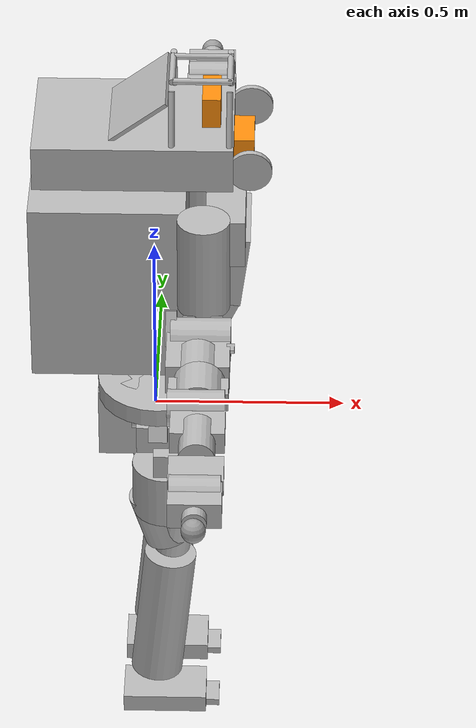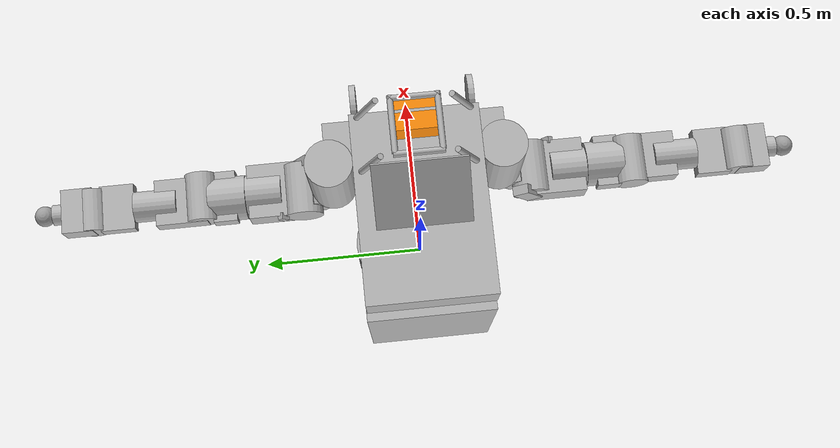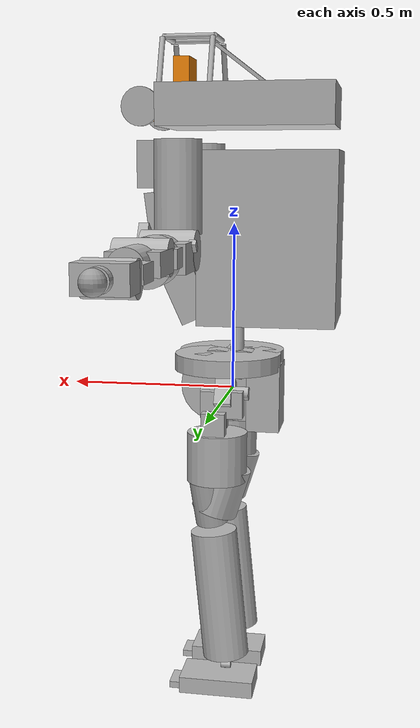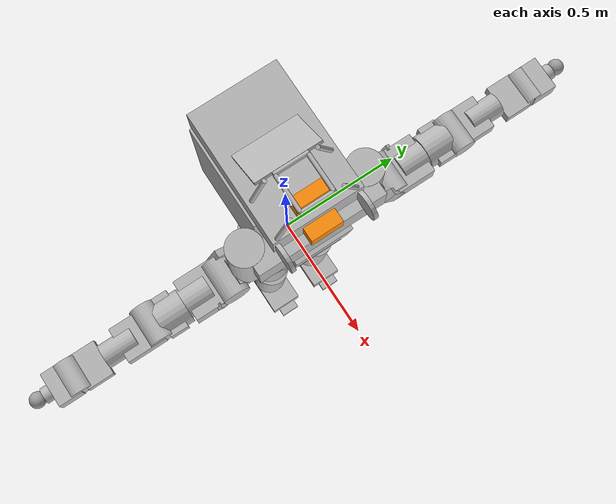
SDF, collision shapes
<sdf version='1.11'>
  <model name='multisense_sl'>
    <link name='pelvis'>
      <inertial>
        <pose>0.0111 0 0.027099999999999999 0 0 0</pose>
        <mass>9.5090000000000003</mass>
        <inertia>
          <ixx>0.1244</ixx>
          <ixy>0.00080000000000000004</ixy>
          <ixz>-0.00069999999999999999</ixz>
          <iyy>0.095799999999999996</iyy>
          <iyz>-0.00050000000000000001</iyz>
          <izz>0.1167</izz>
        </inertia>
      </inertial>
      <collision name='pelvis_collision'>
        <pose>0.045999999999999999 0 0.01 1.5707963267949003 0 0</pose>
        <geometry>
          <cylinder>
            <length>0.059999999999999998</length>
            <radius>0.11</radius>
          </cylinder>
        </geometry>
      </collision>
      <collision name='pelvis_collision_1'>
        <pose>-0.029999999999999999 0 0.01 1.5707963267949003 0 0</pose>
        <geometry>
          <cylinder>
            <length>0.059999999999999998</length>
            <radius>0.11</radius>
          </cylinder>
        </geometry>
      </collision>
      <collision name='pelvis_collision_2'>
        <pose>0.01 0.042000000000000003 0.089999999999999997 0 0 0</pose>
        <geometry>
          <cylinder>
            <length>0.050000000000000003</length>
            <radius>0.16</radius>
          </cylinder>
        </geometry>
      </collision>
      <collision name='pelvis_collision_3'>
        <pose>0.01 -0.042000000000000003 0.089999999999999997 0 0 0</pose>
        <geometry>
          <cylinder>
            <length>0.050000000000000003</length>
            <radius>0.16</radius>
          </cylinder>
        </geometry>
      </collision>
      <collision name='pelvis_collision_4'>
        <pose>-0.10000000000000001 0 -0.02 0 0 0</pose>
        <geometry>
          <box>
            <size>0.10000000000000001 0.14999999999999999 0.20000000000000001</size>
          </box>
        </geometry>
      </collision>
      <visual name='pelvis_visual'>
        <pose>0 0 0 0 0 0</pose>
        <geometry>
          <mesh>
            <scale>1 1 1</scale>
            <uri>atlas_description/meshes_unplugged/pelvis.dae</uri>
          </mesh>
        </geometry>
      </visual>
    </link>
    <joint name='back_bkz' type='revolute'>
      <pose relative_to='pelvis'>-0.012500000000000001 0 0 0 0 0</pose>
      <parent>pelvis</parent>
      <child>ltorso</child>
      <axis>
        <xyz>0 0 1</xyz>
        <limit>
          <lower>-0.66322499999999995</lower>
          <upper>0.66322499999999995</upper>
          <effort>106</effort>
          <velocity>12</velocity>
        </limit>
        <dynamics>
          <damping>0.10000000000000001</damping>
          <friction>0</friction>
          <spring_reference>0</spring_reference>
          <spring_stiffness>0</spring_stiffness>
        </dynamics>
      </axis>
    </joint>
    <link name='ltorso'>
      <pose relative_to='back_bkz'>0 0 0 0 0 0</pose>
      <inertial>
        <pose>-0.0112984 -3.1536600000000001e-06 0.0746835 0 0 0</pose>
        <mass>2.27</mass>
        <inertia>
          <ixx>0.0039091999999999998</ixx>
          <ixy>-5.0449100000000003e-08</ixy>
          <ixz>-0.000342157</ixz>
          <iyy>0.0034169399999999998</iyy>
          <iyz>4.8711899999999996e-07</iyz>
          <izz>0.0017449200000000001</izz>
        </inertia>
      </inertial>
      <visual name='ltorso_visual'>
        <pose>0 0 0 0 0 0</pose>
        <geometry>
          <mesh>
            <scale>1 1 1</scale>
            <uri>atlas_description/meshes_unplugged/ltorso.dae</uri>
          </mesh>
        </geometry>
      </visual>
    </link>
    <joint name='back_bky' type='revolute'>
      <pose relative_to='ltorso'>0 0 0.16200000000000001 0 0 0</pose>
      <parent>ltorso</parent>
      <child>mtorso</child>
      <axis>
        <xyz>0 1 0</xyz>
        <limit>
          <lower>-0.219388</lower>
          <upper>0.53878300000000001</upper>
          <effort>445</effort>
          <velocity>9</velocity>
        </limit>
        <dynamics>
          <damping>0.10000000000000001</damping>
          <friction>0</friction>
          <spring_reference>0</spring_reference>
          <spring_stiffness>0</spring_stiffness>
        </dynamics>
      </axis>
    </joint>
    <link name='mtorso'>
      <pose relative_to='back_bky'>0 0 0 0 0 0</pose>
      <inertial>
        <pose>-0.0081626600000000004 -0.013124500000000001 0.0305974 0 0 0</pose>
        <mass>0.79900000000000004</mass>
        <inertia>
          <ixx>0.00045418100000000001</ixx>
          <ixy>-6.1076399999999997e-05</ixy>
          <ixz>3.9400899999999997e-05</ixz>
          <iyy>0.00048328200000000003</iyy>
          <iyz>5.27463e-05</iyz>
          <izz>0.00044421499999999997</izz>
        </inertia>
      </inertial>
      <collision name='mtorso_collision'>
        <pose>0 0 0.02 0 0 0</pose>
        <geometry>
          <cylinder>
            <length>0.14999999999999999</length>
            <radius>0.02</radius>
          </cylinder>
        </geometry>
      </collision>
      <visual name='mtorso_visual'>
        <pose>0 0 0 0 0 0</pose>
        <geometry>
          <mesh>
            <scale>1 1 1</scale>
            <uri>atlas_description/meshes_unplugged/mtorso.dae</uri>
          </mesh>
        </geometry>
      </visual>
    </link>
    <joint name='back_bkx' type='revolute'>
      <pose relative_to='mtorso'>0 0 0.050000000000000003 0 0 0</pose>
      <parent>mtorso</parent>
      <child>utorso</child>
      <axis>
        <xyz>1 0 0</xyz>
        <limit>
          <lower>-0.52359900000000004</lower>
          <upper>0.52359900000000004</upper>
          <effort>300</effort>
          <velocity>12</velocity>
        </limit>
        <dynamics>
          <damping>0.10000000000000001</damping>
          <friction>0</friction>
          <spring_reference>0</spring_reference>
          <spring_stiffness>0</spring_stiffness>
        </dynamics>
      </axis>
    </joint>
    <link name='utorso'>
      <pose relative_to='back_bkx'>0 0 0 0 0 0</pose>
      <inertial>
        <pose>-0.062199999999999998 0.0023 0.31569999999999998 0 0 0</pose>
        <mass>84.409000000000006</mass>
        <inertia>
          <ixx>1.577</ixx>
          <ixy>-0.032000000000000001</ixy>
          <ixz>0.10199999999999999</ixz>
          <iyy>1.6020000000000001</iyy>
          <iyz>0.047</iyz>
          <izz>0.56499999999999995</izz>
        </inertia>
      </inertial>
      <collision name='utorso_collision'>
        <pose>-0.10199999999999999 0 0.25 0 0 0</pose>
        <geometry>
          <box>
            <size>0.40000000000000002 0.34999999999999998 0.5</size>
          </box>
        </geometry>
      </collision>
      <collision name='utorso_collision_1'>
        <pose>0.20000000000000001 0 0.46000000000000002 0 1.5707963267948966 0</pose>
        <geometry>
          <box>
            <size>0.13 0.5 0.10000000000000001</size>
          </box>
        </geometry>
      </collision>
      <collision name='utorso_collision_2'>
        <pose>0.20000000000000001 0 0.28499999999999998 3.1415926535897931 1.4415926535897954 3.1415926535897931</pose>
        <geometry>
          <box>
            <size>0.20000000000000001 0.23000000000000001 0.10000000000000001</size>
          </box>
        </geometry>
      </collision>
      <collision name='utorso_collision_3'>
        <pose>0.14999999999999999 0 0.10000000000000001 3.1415926535897931 1.1415926535897938 3.1415926535897931</pose>
        <geometry>
          <box>
            <size>0.20000000000000001 0.17999999999999999 0.10000000000000001</size>
          </box>
        </geometry>
      </collision>
      <collision name='utorso_collision_4'>
        <pose>-0.035000000000000003 0 0.62649999999999995 0 0 0</pose>
        <geometry>
          <box>
            <size>0.50630600000000003 0.34171899999999999 0.12</size>
          </box>
        </geometry>
      </collision>
      <collision name='utorso_collision_5'>
        <pose>0.20799999999999999 0 0.82150000000000001 1.5707 0 0</pose>
        <geometry>
          <cylinder>
            <length>0.13</length>
            <radius>0.0080000000000000002</radius>
          </cylinder>
        </geometry>
      </collision>
      <collision name='utorso_collision_6'>
        <pose>0.20799999999999999 -0.125 0.745 -0.38535000000000003 0 0</pose>
        <geometry>
          <cylinder>
            <length>0.14999999999999999</length>
            <radius>0.0080000000000000002</radius>
          </cylinder>
        </geometry>
      </collision>
      <collision name='utorso_collision_7'>
        <pose>0.20799999999999999 0.125 0.745 0.38535000000000003 0 0</pose>
        <geometry>
          <cylinder>
            <length>0.14999999999999999</length>
            <radius>0.0080000000000000002</radius>
          </cylinder>
        </geometry>
      </collision>
      <collision name='utorso_collision_8'>
        <pose>0.063 -0.125 0.745 -0.38535000000000003 0 0</pose>
        <geometry>
          <cylinder>
            <length>0.14999999999999999</length>
            <radius>0.0080000000000000002</radius>
          </cylinder>
        </geometry>
      </collision>
      <collision name='utorso_collision_9'>
        <pose>0.063 0.125 0.745 0.38535000000000003 0 0</pose>
        <geometry>
          <cylinder>
            <length>0.14999999999999999</length>
            <radius>0.0080000000000000002</radius>
          </cylinder>
        </geometry>
      </collision>
      <collision name='utorso_collision_10'>
        <pose>0.14000000000000001 0.059999999999999998 0.82150000000000001 1.5707 5.5511151231257827e-17 1.5707</pose>
        <geometry>
          <cylinder>
            <length>0.14999999999999999</length>
            <radius>0.0080000000000000002</radius>
          </cylinder>
        </geometry>
      </collision>
      <collision name='utorso_collision_11'>
        <pose>0.14000000000000001 -0.059999999999999998 0.82150000000000001 1.5707 5.5511151231257827e-17 1.5707</pose>
        <geometry>
          <cylinder>
            <length>0.14999999999999999</length>
            <radius>0.0080000000000000002</radius>
          </cylinder>
        </geometry>
      </collision>
      <collision name='utorso_collision_12'>
        <pose>-0.029000000000000001 0 0.73099999999999998 0 -0.65000000000000002 0</pose>
        <geometry>
          <box>
            <size>0.20000000000000001 0.25 0.01</size>
          </box>
        </geometry>
      </collision>
      <collision name='utorso_collision_13'>
        <pose>0.063 0 0.82150000000000001 1.5707 0 0</pose>
        <geometry>
          <cylinder>
            <length>0.13</length>
            <radius>0.0080000000000000002</radius>
          </cylinder>
        </geometry>
      </collision>
      <collision name='utorso_collision_14'>
        <pose>0.26100000000000001 0.156 0.62150000000000005 1.5707 0 0</pose>
        <geometry>
          <cylinder>
            <length>0.016</length>
            <radius>0.055</radius>
          </cylinder>
        </geometry>
      </collision>
      <collision name='utorso_collision_15'>
        <pose>0.26100000000000001 -0.156 0.62150000000000005 1.5707 0 0</pose>
        <geometry>
          <cylinder>
            <length>0.016</length>
            <radius>0.055</radius>
          </cylinder>
        </geometry>
      </collision>
      <visual name='utorso_visual'>
        <pose>0 0 0 0 0 0</pose>
        <geometry>
          <mesh>
            <scale>1 1 1</scale>
            <uri>atlas_description/meshes_unplugged/utorso.dae</uri>
          </mesh>
        </geometry>
      </visual>
    </link>
    <joint name='l_arm_shz' type='revolute'>
      <pose relative_to='utorso'>0.1406 0.22559999999999999 0.47760000000000002 0 0 -3.1415926535895871</pose>
      <parent>utorso</parent>
      <child>l_clav</child>
      <axis>
        <xyz>0 0 1</xyz>
        <limit>
          <lower>-1.5708</lower>
          <upper>0.78539800000000004</upper>
          <effort>87</effort>
          <velocity>12</velocity>
        </limit>
        <dynamics>
          <damping>0.10000000000000001</damping>
          <friction>0</friction>
          <spring_reference>0</spring_reference>
          <spring_stiffness>0</spring_stiffness>
        </dynamics>
      </axis>
    </joint>
    <link name='l_clav'>
      <pose relative_to='l_arm_shz'>0 0 0 0 0 0</pose>
      <inertial>
        <pose>0 -0.048000000000000001 -0.084000000000000005 0 0 0</pose>
        <mass>4.4660000000000002</mass>
        <inertia>
          <ixx>0.010999999999999999</ixx>
          <ixy>0</ixy>
          <ixz>0</ixz>
          <iyy>0.0089999999999999993</iyy>
          <iyz>0.0040000000000000001</iyz>
          <izz>0.0040000000000000001</izz>
        </inertia>
      </inertial>
      <collision name='l_clav_collision'>
        <pose>0 -0.11 -0.248 0 1.5707963267948966 0</pose>
        <geometry>
          <cylinder>
            <length>0.1525</length>
            <radius>0.055500000000000001</radius>
          </cylinder>
        </geometry>
      </collision>
      <collision name='l_clav_collision_1'>
        <pose>0.0050000000000000001 -0.014999999999999999 -0.080000000000000002 0 0 0</pose>
        <geometry>
          <cylinder>
            <length>0.26000000000000001</length>
            <radius>0.067000000000000004</radius>
          </cylinder>
        </geometry>
      </collision>
      <collision name='l_clav_collision_2'>
        <pose>0.0040000000000000001 -0.064000000000000001 -0.247 1.0500000000000003 0 0</pose>
        <geometry>
          <box>
            <size>0.10000000000000001 0.070000000000000007 0.071999999999999995</size>
          </box>
        </geometry>
      </collision>
      <visual name='l_clav_visual'>
        <pose>0 0 0 0 0 0</pose>
        <geometry>
          <mesh>
            <scale>1 1 1</scale>
            <uri>atlas_description/meshes_unplugged/r_clav.dae</uri>
          </mesh>
        </geometry>
      </visual>
    </link>
    <joint name='l_arm_shx' type='revolute'>
      <pose relative_to='l_clav'>0 -0.11 -0.245 0 0 0</pose>
      <parent>l_clav</parent>
      <child>l_scap</child>
      <axis>
        <xyz>-1 0 0</xyz>
        <limit>
          <lower>-1.5708</lower>
          <upper>1.5708</upper>
          <effort>99</effort>
          <velocity>12</velocity>
        </limit>
        <dynamics>
          <damping>0.10000000000000001</damping>
          <friction>0</friction>
          <spring_reference>0</spring_reference>
          <spring_stiffness>0</spring_stiffness>
        </dynamics>
      </axis>
    </joint>
    <link name='l_scap'>
      <pose relative_to='l_arm_shx'>0 0 0 0 0 0</pose>
      <inertial>
        <pose>0 0 0 0 0 0</pose>
        <mass>3.899</mass>
        <inertia>
          <ixx>0.0031900000000000001</ixx>
          <ixy>0</ixy>
          <ixz>0</ixz>
          <iyy>0.0058300000000000001</iyy>
          <iyz>0</iyz>
          <izz>0.0058300000000000001</izz>
        </inertia>
      </inertial>
      <collision name='l_scap_collision'>
        <pose>-0.0050000000000000001 -0.115 -0.014 1.5707963267949003 0 0</pose>
        <geometry>
          <cylinder>
            <length>0.105</length>
            <radius>0.057000000000000002</radius>
          </cylinder>
        </geometry>
      </collision>
      <collision name='l_scap_collision_1'>
        <pose>-0.0050000000000000001 -0.074999999999999997 -0.014999999999999999 0 0 0</pose>
        <geometry>
          <box>
            <size>0.16 0.17000000000000001 0.080000000000000002</size>
          </box>
        </geometry>
      </collision>
      <collision name='l_scap_collision_2'>
        <pose>0.075999999999999998 -0.061499999999999999 0.012800000000000001 2.25 0 0</pose>
        <geometry>
          <box>
            <size>0.02 0.029000000000000001 0.017999999999999999</size>
          </box>
        </geometry>
      </collision>
      <collision name='l_scap_collision_3'>
        <pose>-0.074999999999999997 0.014999999999999999 0.019 1 0 0</pose>
        <geometry>
          <box>
            <size>0.028000000000000001 0.089999999999999997 0.050000000000000003</size>
          </box>
        </geometry>
      </collision>
      <visual name='l_scap_visual'>
        <pose>0 0 0 0 0 0</pose>
        <geometry>
          <mesh>
            <scale>1 1 1</scale>
            <uri>atlas_description/meshes_unplugged/r_scap.dae</uri>
          </mesh>
        </geometry>
      </visual>
    </link>
    <joint name='l_arm_ely' type='revolute'>
      <pose relative_to='l_scap'>0 -0.187 -0.016 0 0 0</pose>
      <parent>l_scap</parent>
      <child>l_uarm</child>
      <axis>
        <xyz>0 -1 0</xyz>
        <limit>
          <lower>0</lower>
          <upper>3.1415899999999999</upper>
          <effort>63</effort>
          <velocity>12</velocity>
        </limit>
        <dynamics>
          <damping>0.20000000000000001</damping>
          <friction>0</friction>
          <spring_reference>0</spring_reference>
          <spring_stiffness>0</spring_stiffness>
        </dynamics>
      </axis>
    </joint>
    <link name='l_uarm'>
      <pose relative_to='l_arm_ely'>0 0 0 0 0 0</pose>
      <inertial>
        <pose>0 0.065000000000000002 0 0 0 0</pose>
        <mass>4.3860000000000001</mass>
        <inertia>
          <ixx>0.0065599999999999999</ixx>
          <ixy>0</ixy>
          <ixz>0</ixz>
          <iyy>0.0035799999999999998</iyy>
          <iyz>0</iyz>
          <izz>0.0065599999999999999</izz>
        </inertia>
      </inertial>
      <collision name='l_uarm_collision'>
        <pose>0 -0.035000000000000003 0 1.5708 0 0</pose>
        <geometry>
          <cylinder>
            <length>0.11</length>
            <radius>0.065000000000000002</radius>
          </cylinder>
        </geometry>
      </collision>
      <collision name='l_uarm_collision_1'>
        <pose>-0.0050000000000000001 -0.111 0.017000000000000001 0 1.5707963267948966 0</pose>
        <geometry>
          <cylinder>
            <length>0.14199999999999999</length>
            <radius>0.047</radius>
          </cylinder>
        </geometry>
      </collision>
      <collision name='l_uarm_collision_2'>
        <pose>-0.001 -0.042999999999999997 0.01 0 1.5707963267948966 0</pose>
        <geometry>
          <box>
            <size>0.050000000000000003 0.070000000000000007 0.14999999999999999</size>
          </box>
        </geometry>
      </collision>
      <visual name='l_uarm_visual'>
        <pose>0 0 0 0 0 0</pose>
        <geometry>
          <mesh>
            <scale>1 1 1</scale>
            <uri>atlas_description/meshes_unplugged/r_uarm.dae</uri>
          </mesh>
        </geometry>
      </visual>
    </link>
    <joint name='l_arm_elx' type='revolute'>
      <pose relative_to='l_uarm'>0 -0.11899999999999999 0.0091999999999999998 0 0 0</pose>
      <parent>l_uarm</parent>
      <child>l_larm</child>
      <axis>
        <xyz>-1 0 0</xyz>
        <limit>
          <lower>0</lower>
          <upper>2.3561899999999998</upper>
          <effort>112</effort>
          <velocity>12</velocity>
        </limit>
        <dynamics>
          <damping>0.20000000000000001</damping>
          <friction>0</friction>
          <spring_reference>0</spring_reference>
          <spring_stiffness>0</spring_stiffness>
        </dynamics>
      </axis>
    </joint>
    <link name='l_larm'>
      <pose relative_to='l_arm_elx'>0 0 0 0 0 0</pose>
      <inertial>
        <pose>0 0 0 0 0 0</pose>
        <mass>3.2480000000000002</mass>
        <inertia>
          <ixx>0.00265</ixx>
          <ixy>0</ixy>
          <ixz>0</ixz>
          <iyy>0.0044600000000000004</iyy>
          <iyz>0</iyz>
          <izz>0.0044600000000000004</izz>
        </inertia>
      </inertial>
      <collision name='l_larm_collision'>
        <pose>0.001 -0.127 0 1.5707963267949003 0 0</pose>
        <geometry>
          <cylinder>
            <length>0.125</length>
            <radius>0.044999999999999998</radius>
          </cylinder>
        </geometry>
      </collision>
      <collision name='l_larm_collision_1'>
        <pose>0.001 -0.050999999999999997 0 0 0 0</pose>
        <geometry>
          <box>
            <size>0.13500000000000001 0.14999999999999999 0.059999999999999998</size>
          </box>
        </geometry>
      </collision>
      <visual name='l_larm_visual'>
        <pose>0 0 0 0 0 0</pose>
        <geometry>
          <mesh>
            <scale>1 1 1</scale>
            <uri>atlas_description/meshes_v3/r_larm.dae</uri>
          </mesh>
        </geometry>
      </visual>
    </link>
    <joint name='l_arm_wry' type='revolute'>
      <pose relative_to='l_larm'>0 -0.187 -0.0091999999999999998 3.1415926535897931 -2.0682310711021439e-13 3.1415926535897931</pose>
      <parent>l_larm</parent>
      <child>l_ufarm</child>
      <axis>
        <xyz>0 -1 0</xyz>
        <limit>
          <lower>0</lower>
          <upper>3.1415899999999999</upper>
          <effort>25</effort>
          <velocity>12</velocity>
        </limit>
        <dynamics>
          <damping>0.10000000000000001</damping>
          <friction>0</friction>
          <spring_reference>0</spring_reference>
          <spring_stiffness>0</spring_stiffness>
        </dynamics>
      </axis>
    </joint>
    <link name='l_ufarm'>
      <pose relative_to='l_arm_wry'>0 0 0 0 0 0</pose>
      <inertial>
        <pose>0 0.065000000000000002 0 0 0 0</pose>
        <mass>4.3860000000000001</mass>
        <inertia>
          <ixx>0.0065599999999999999</ixx>
          <ixy>0</ixy>
          <ixz>0</ixz>
          <iyy>0.0035799999999999998</iyy>
          <iyz>0</iyz>
          <izz>0.0065599999999999999</izz>
        </inertia>
      </inertial>
      <collision name='l_ufarm_collision'>
        <pose>0 -0.13 0.0040000000000000001 0 1.5707963267948966 0</pose>
        <geometry>
          <cylinder>
            <length>0.125</length>
            <radius>0.044999999999999998</radius>
          </cylinder>
        </geometry>
      </collision>
      <collision name='l_ufarm_collision_1'>
        <pose>0.001 -0.052999999999999999 -0.002 0 0 0</pose>
        <geometry>
          <box>
            <size>0.13500000000000001 0.10000000000000001 0.044999999999999998</size>
          </box>
        </geometry>
      </collision>
      <visual name='l_ufarm_visual'>
        <pose>0 0 0 0 0 0</pose>
        <geometry>
          <mesh>
            <scale>1 1 1</scale>
            <uri>atlas_description/meshes_v3/r_farm.dae</uri>
          </mesh>
        </geometry>
      </visual>
    </link>
    <joint name='l_arm_wrx' type='revolute'>
      <pose relative_to='l_ufarm'>0 -0.11899999999999999 0.0091999999999999998 0 0 0</pose>
      <parent>l_ufarm</parent>
      <child>l_lfarm</child>
      <axis>
        <xyz>1 0 0</xyz>
        <limit>
          <lower>-1.1780999999999999</lower>
          <upper>1.1780999999999999</upper>
          <effort>25</effort>
          <velocity>12</velocity>
        </limit>
        <dynamics>
          <damping>0.10000000000000001</damping>
          <friction>0</friction>
          <spring_reference>0</spring_reference>
          <spring_stiffness>0</spring_stiffness>
        </dynamics>
      </axis>
    </joint>
    <link name='l_lfarm'>
      <pose relative_to='l_arm_wrx'>0 0 0 0 0 0</pose>
      <inertial>
        <pose>0 0 0 0 0 0</pose>
        <mass>2.5089999999999999</mass>
        <inertia>
          <ixx>0.00265</ixx>
          <ixy>0</ixy>
          <ixz>0</ixz>
          <iyy>0.0044600000000000004</iyy>
          <iyz>0</iyz>
          <izz>0.0044600000000000004</izz>
        </inertia>
      </inertial>
      <collision name='l_lfarm_collision'>
        <pose>0.001 -0.10000000000000001 -0.01 1.5707963267949003 0 0</pose>
        <geometry>
          <cylinder>
            <length>0.050000000000000003</length>
            <radius>0.029999999999999999</radius>
          </cylinder>
        </geometry>
      </collision>
      <collision name='l_lfarm_collision_1'>
        <pose>0.001 -0.050000000000000003 -0.01 0 0 0</pose>
        <geometry>
          <box>
            <size>0.13 0.089999999999999997 0.070000000000000007</size>
          </box>
        </geometry>
      </collision>
      <visual name='l_lfarm_visual'>
        <pose>0 0 0 3.1415926535897931 -2.0682310711021439e-13 3.1415926535897931</pose>
        <geometry>
          <mesh>
            <scale>1 1 1</scale>
            <uri>atlas_description/meshes_v3/r_hand.dae</uri>
          </mesh>
        </geometry>
      </visual>
    </link>
    <joint name='l_arm_wry2' type='revolute'>
      <pose relative_to='l_lfarm'>0 0 0 3.1415926535897931 -2.0682310711021439e-13 3.1415926535897931</pose>
      <parent>l_lfarm</parent>
      <child>l_hand</child>
      <axis>
        <xyz>0 1 0</xyz>
        <limit>
          <lower>-0.001</lower>
          <upper>0.001</upper>
          <effort>5</effort>
          <velocity>1</velocity>
        </limit>
        <dynamics>
          <damping>0.10000000000000001</damping>
          <friction>0</friction>
          <spring_reference>0</spring_reference>
          <spring_stiffness>0</spring_stiffness>
        </dynamics>
      </axis>
    </joint>
    <link name='l_hand'>
      <pose relative_to='l_arm_wry2'>0 0 0 0 0 0</pose>
      <inertial>
        <pose>0 0 0 0 0 0</pose>
        <mass>1</mass>
        <inertia>
          <ixx>0.0001</ixx>
          <ixy>0</ixy>
          <ixz>0</ixz>
          <iyy>0.0001</iyy>
          <iyz>0</iyz>
          <izz>0.0001</izz>
        </inertia>
      </inertial>
      <collision name='l_hand_collision'>
        <pose>0 -0.14999999999999999 0.01 0 0 0</pose>
        <geometry>
          <sphere>
            <radius>0.029999999999999999</radius>
          </sphere>
        </geometry>
      </collision>
      <visual name='l_hand_visual'>
        <pose>0 -0.14999999999999999 0.01 0 0 0</pose>
        <geometry>
          <sphere>
            <radius>0.029999999999999999</radius>
          </sphere>
        </geometry>
        <material>
          <diffuse>0.625 0.625 0.625 1</diffuse>
          <ambient>0.625 0.625 0.625 1</ambient>
        </material>
      </visual>
    </link>
    <joint name='neck_ry' type='revolute'>
      <pose relative_to='utorso'>0.25459999999999999 0 0.62150000000000005 0 0 0</pose>
      <parent>utorso</parent>
      <child>head</child>
      <axis>
        <xyz>0 1 0</xyz>
        <limit>
          <lower>-0.60213899999999998</lower>
          <upper>1.1431899999999999</upper>
          <effort>5</effort>
          <velocity>6.2800000000000002</velocity>
        </limit>
        <dynamics>
          <damping>0.10000000000000001</damping>
          <friction>0</friction>
          <spring_reference>0</spring_reference>
          <spring_stiffness>0</spring_stiffness>
        </dynamics>
      </axis>
    </joint>
    <link name='head'>
      <pose relative_to='neck_ry'>0 0 0 0 0 0</pose>
      <inertial>
        <pose>-0.075493000000000005 3.3383000000000002e-05 0.027740000000000001 0 0 0</pose>
        <mass>1.41984</mass>
        <inertia>
          <ixx>0.0039687999999999998</ixx>
          <ixy>-1.5797000000000001e-06</ixy>
          <ixz>-0.00089293</ixz>
          <iyy>0.0041177999999999996</iyy>
          <iyz>-6.8415000000000005e-07</iyz>
          <izz>0.0035243000000000002</izz>
        </inertia>
      </inertial>
      <collision name='head_collision'>
        <pose>-0.050299999999999997 0 -0.0019499999999999999 0 0 0</pose>
        <geometry>
          <box>
            <size>0.13109999999999999 0.12 0.0591</size>
          </box>
        </geometry>
      </collision>
      <collision name='head_collision_1'>
        <pose>-0.092999999999999999 0 0.086800000000000002 0 0 0</pose>
        <geometry>
          <box>
            <size>0.046800000000000001 0.12 0.11840000000000001</size>
          </box>
        </geometry>
      </collision>
      <visual name='head_visual'>
        <pose>0 0 0 0 0 0</pose>
        <geometry>
          <mesh>
            <scale>1 1 1</scale>
            <uri>multisense_sl_description/meshes/head.dae</uri>
          </mesh>
        </geometry>
        <material>
          <diffuse>1 0.553924978 0.0392162539 1</diffuse>
          <ambient>1 0.553924978 0.0392162539 1</ambient>
        </material>
      </visual>
    </link>
    <joint name='r_arm_shz' type='revolute'>
      <pose relative_to='utorso'>0.1406 -0.22559999999999999 0.47760000000000002 0 0 0</pose>
      <parent>utorso</parent>
      <child>r_clav</child>
      <axis>
        <xyz>0 0 1</xyz>
        <limit>
          <lower>-0.78539800000000004</lower>
          <upper>1.5708</upper>
          <effort>87</effort>
          <velocity>12</velocity>
        </limit>
        <dynamics>
          <damping>0.10000000000000001</damping>
          <friction>0</friction>
          <spring_reference>0</spring_reference>
          <spring_stiffness>0</spring_stiffness>
        </dynamics>
      </axis>
    </joint>
    <link name='r_clav'>
      <pose relative_to='r_arm_shz'>0 0 0 0 0 0</pose>
      <inertial>
        <pose>0 -0.048000000000000001 -0.084000000000000005 0 0 0</pose>
        <mass>4.4660000000000002</mass>
        <inertia>
          <ixx>0.010999999999999999</ixx>
          <ixy>0</ixy>
          <ixz>0</ixz>
          <iyy>0.0089999999999999993</iyy>
          <iyz>0.0040000000000000001</iyz>
          <izz>0.0040000000000000001</izz>
        </inertia>
      </inertial>
      <collision name='r_clav_collision'>
        <pose>0 -0.11 -0.248 0 1.5707963267948966 0</pose>
        <geometry>
          <cylinder>
            <length>0.1525</length>
            <radius>0.055500000000000001</radius>
          </cylinder>
        </geometry>
      </collision>
      <collision name='r_clav_collision_1'>
        <pose>0.0050000000000000001 -0.014999999999999999 -0.080000000000000002 0 0 0</pose>
        <geometry>
          <cylinder>
            <length>0.26000000000000001</length>
            <radius>0.067000000000000004</radius>
          </cylinder>
        </geometry>
      </collision>
      <collision name='r_clav_collision_2'>
        <pose>0.0040000000000000001 -0.064000000000000001 -0.247 1.0500000000000003 0 0</pose>
        <geometry>
          <box>
            <size>0.10000000000000001 0.070000000000000007 0.071999999999999995</size>
          </box>
        </geometry>
      </collision>
      <visual name='r_clav_visual'>
        <pose>0 0 0 0 0 0</pose>
        <geometry>
          <mesh>
            <scale>1 1 1</scale>
            <uri>atlas_description/meshes_unplugged/r_clav.dae</uri>
          </mesh>
        </geometry>
      </visual>
    </link>
    <joint name='r_arm_shx' type='revolute'>
      <pose relative_to='r_clav'>0 -0.11 -0.245 0 0 0</pose>
      <parent>r_clav</parent>
      <child>r_scap</child>
      <axis>
        <xyz>1 0 0</xyz>
        <limit>
          <lower>-1.5708</lower>
          <upper>1.5708</upper>
          <effort>99</effort>
          <velocity>12</velocity>
        </limit>
        <dynamics>
          <damping>0.10000000000000001</damping>
          <friction>0</friction>
          <spring_reference>0</spring_reference>
          <spring_stiffness>0</spring_stiffness>
        </dynamics>
      </axis>
    </joint>
    <link name='r_scap'>
      <pose relative_to='r_arm_shx'>0 0 0 0 0 0</pose>
      <inertial>
        <pose>0 0 0 0 0 0</pose>
        <mass>3.899</mass>
        <inertia>
          <ixx>0.0031900000000000001</ixx>
          <ixy>0</ixy>
          <ixz>0</ixz>
          <iyy>0.0058300000000000001</iyy>
          <iyz>0</iyz>
          <izz>0.0058300000000000001</izz>
        </inertia>
      </inertial>
      <collision name='r_scap_collision'>
        <pose>-0.0050000000000000001 -0.115 -0.014 1.5707963267949003 0 0</pose>
        <geometry>
          <cylinder>
            <length>0.105</length>
            <radius>0.057000000000000002</radius>
          </cylinder>
        </geometry>
      </collision>
      <collision name='r_scap_collision_1'>
        <pose>-0.0050000000000000001 -0.074999999999999997 -0.014999999999999999 0 0 0</pose>
        <geometry>
          <box>
            <size>0.16 0.17000000000000001 0.080000000000000002</size>
          </box>
        </geometry>
      </collision>
      <collision name='r_scap_collision_2'>
        <pose>0.075999999999999998 -0.061499999999999999 0.012800000000000001 2.25 0 0</pose>
        <geometry>
          <box>
            <size>0.02 0.029000000000000001 0.017999999999999999</size>
          </box>
        </geometry>
      </collision>
      <collision name='r_scap_collision_3'>
        <pose>-0.074999999999999997 0.014999999999999999 0.019 1 0 0</pose>
        <geometry>
          <box>
            <size>0.028000000000000001 0.089999999999999997 0.050000000000000003</size>
          </box>
        </geometry>
      </collision>
      <visual name='r_scap_visual'>
        <pose>0 0 0 0 0 0</pose>
        <geometry>
          <mesh>
            <scale>1 1 1</scale>
            <uri>atlas_description/meshes_unplugged/r_scap.dae</uri>
          </mesh>
        </geometry>
      </visual>
    </link>
    <joint name='r_arm_ely' type='revolute'>
      <pose relative_to='r_scap'>0 -0.187 -0.016 0 0 0</pose>
      <parent>r_scap</parent>
      <child>r_uarm</child>
      <axis>
        <xyz>0 1 0</xyz>
        <limit>
          <lower>0</lower>
          <upper>3.1415899999999999</upper>
          <effort>63</effort>
          <velocity>12</velocity>
        </limit>
        <dynamics>
          <damping>0.20000000000000001</damping>
          <friction>0</friction>
          <spring_reference>0</spring_reference>
          <spring_stiffness>0</spring_stiffness>
        </dynamics>
      </axis>
    </joint>
    <link name='r_uarm'>
      <pose relative_to='r_arm_ely'>0 0 0 0 0 0</pose>
      <inertial>
        <pose>0 0.065000000000000002 0 0 0 0</pose>
        <mass>4.3860000000000001</mass>
        <inertia>
          <ixx>0.0065599999999999999</ixx>
          <ixy>0</ixy>
          <ixz>0</ixz>
          <iyy>0.0035799999999999998</iyy>
          <iyz>0</iyz>
          <izz>0.0065599999999999999</izz>
        </inertia>
      </inertial>
      <collision name='r_uarm_collision'>
        <pose>0 -0.035000000000000003 0 1.5708 0 0</pose>
        <geometry>
          <cylinder>
            <length>0.11</length>
            <radius>0.065000000000000002</radius>
          </cylinder>
        </geometry>
      </collision>
      <collision name='r_uarm_collision_1'>
        <pose>-0.0050000000000000001 -0.111 0.017000000000000001 0 1.5707963267948966 0</pose>
        <geometry>
          <cylinder>
            <length>0.14199999999999999</length>
            <radius>0.047</radius>
          </cylinder>
        </geometry>
      </collision>
      <collision name='r_uarm_collision_2'>
        <pose>-0.001 -0.042999999999999997 0.01 0 1.5707963267948966 0</pose>
        <geometry>
          <box>
            <size>0.050000000000000003 0.070000000000000007 0.14999999999999999</size>
          </box>
        </geometry>
      </collision>
      <visual name='r_uarm_visual'>
        <pose>0 0 0 0 0 0</pose>
        <geometry>
          <mesh>
            <scale>1 1 1</scale>
            <uri>atlas_description/meshes_unplugged/r_uarm.dae</uri>
          </mesh>
        </geometry>
      </visual>
    </link>
    <joint name='r_arm_elx' type='revolute'>
      <pose relative_to='r_uarm'>0 -0.11899999999999999 0.0091999999999999998 0 0 0</pose>
      <parent>r_uarm</parent>
      <child>r_larm</child>
      <axis>
        <xyz>1 0 0</xyz>
        <limit>
          <lower>-2.3561899999999998</lower>
          <upper>0</upper>
          <effort>112</effort>
          <velocity>12</velocity>
        </limit>
        <dynamics>
          <damping>0.20000000000000001</damping>
          <friction>0</friction>
          <spring_reference>0</spring_reference>
          <spring_stiffness>0</spring_stiffness>
        </dynamics>
      </axis>
    </joint>
    <link name='r_larm'>
      <pose relative_to='r_arm_elx'>0 0 0 0 0 0</pose>
      <inertial>
        <pose>0 0 0 0 0 0</pose>
        <mass>3.2480000000000002</mass>
        <inertia>
          <ixx>0.00265</ixx>
          <ixy>0</ixy>
          <ixz>0</ixz>
          <iyy>0.0044600000000000004</iyy>
          <iyz>0</iyz>
          <izz>0.0044600000000000004</izz>
        </inertia>
      </inertial>
      <collision name='r_larm_collision'>
        <pose>0.001 -0.127 0 1.5707963267949003 0 0</pose>
        <geometry>
          <cylinder>
            <length>0.125</length>
            <radius>0.044999999999999998</radius>
          </cylinder>
        </geometry>
      </collision>
      <collision name='r_larm_collision_1'>
        <pose>0.001 -0.050999999999999997 0 0 0 0</pose>
        <geometry>
          <box>
            <size>0.13500000000000001 0.14999999999999999 0.059999999999999998</size>
          </box>
        </geometry>
      </collision>
      <visual name='r_larm_visual'>
        <pose>0 0 0 0 0 0</pose>
        <geometry>
          <mesh>
            <scale>1 1 1</scale>
            <uri>atlas_description/meshes_v3/r_larm.dae</uri>
          </mesh>
        </geometry>
      </visual>
    </link>
    <joint name='r_arm_wry' type='revolute'>
      <pose relative_to='r_larm'>0 -0.187 -0.0091999999999999998 0 0 0</pose>
      <parent>r_larm</parent>
      <child>r_ufarm</child>
      <axis>
        <xyz>0 1 0</xyz>
        <limit>
          <lower>0</lower>
          <upper>3.1415899999999999</upper>
          <effort>25</effort>
          <velocity>12</velocity>
        </limit>
        <dynamics>
          <damping>0.10000000000000001</damping>
          <friction>0</friction>
          <spring_reference>0</spring_reference>
          <spring_stiffness>0</spring_stiffness>
        </dynamics>
      </axis>
    </joint>
    <link name='r_ufarm'>
      <pose relative_to='r_arm_wry'>0 0 0 0 0 0</pose>
      <inertial>
        <pose>0 0.065000000000000002 0 0 0 0</pose>
        <mass>4.3860000000000001</mass>
        <inertia>
          <ixx>0.0065599999999999999</ixx>
          <ixy>0</ixy>
          <ixz>0</ixz>
          <iyy>0.0035799999999999998</iyy>
          <iyz>0</iyz>
          <izz>0.0065599999999999999</izz>
        </inertia>
      </inertial>
      <collision name='r_ufarm_collision'>
        <pose>0 -0.13 0.0040000000000000001 0 1.5707963267948966 0</pose>
        <geometry>
          <cylinder>
            <length>0.125</length>
            <radius>0.044999999999999998</radius>
          </cylinder>
        </geometry>
      </collision>
      <collision name='r_ufarm_collision_1'>
        <pose>0.001 -0.052999999999999999 -0.002 0 0 0</pose>
        <geometry>
          <box>
            <size>0.13500000000000001 0.10000000000000001 0.044999999999999998</size>
          </box>
        </geometry>
      </collision>
      <visual name='r_ufarm_visual'>
        <pose>0 0 0 0 0 0</pose>
        <geometry>
          <mesh>
            <scale>1 1 1</scale>
            <uri>atlas_description/meshes_v3/r_farm.dae</uri>
          </mesh>
        </geometry>
      </visual>
    </link>
    <joint name='r_arm_wrx' type='revolute'>
      <pose relative_to='r_ufarm'>0 -0.11899999999999999 0.0091999999999999998 0 0 0</pose>
      <parent>r_ufarm</parent>
      <child>r_lfarm</child>
      <axis>
        <xyz>1 0 0</xyz>
        <limit>
          <lower>-1.1780999999999999</lower>
          <upper>1.1780999999999999</upper>
          <effort>25</effort>
          <velocity>12</velocity>
        </limit>
        <dynamics>
          <damping>0.10000000000000001</damping>
          <friction>0</friction>
          <spring_reference>0</spring_reference>
          <spring_stiffness>0</spring_stiffness>
        </dynamics>
      </axis>
    </joint>
    <link name='r_lfarm'>
      <pose relative_to='r_arm_wrx'>0 0 0 0 0 0</pose>
      <inertial>
        <pose>0 0 0 0 0 0</pose>
        <mass>2.5089999999999999</mass>
        <inertia>
          <ixx>0.00265</ixx>
          <ixy>0</ixy>
          <ixz>0</ixz>
          <iyy>0.0044600000000000004</iyy>
          <iyz>0</iyz>
          <izz>0.0044600000000000004</izz>
        </inertia>
      </inertial>
      <collision name='r_lfarm_collision'>
        <pose>0.001 -0.10000000000000001 -0.01 1.5707963267949003 0 0</pose>
        <geometry>
          <cylinder>
            <length>0.050000000000000003</length>
            <radius>0.029999999999999999</radius>
          </cylinder>
        </geometry>
      </collision>
      <collision name='r_lfarm_collision_1'>
        <pose>0.001 -0.050000000000000003 -0.01 0 0 0</pose>
        <geometry>
          <box>
            <size>0.13 0.089999999999999997 0.070000000000000007</size>
          </box>
        </geometry>
      </collision>
      <visual name='r_lfarm_visual'>
        <pose>0 0 0 3.1415926535897931 -2.0682310711021439e-13 3.1415926535897931</pose>
        <geometry>
          <mesh>
            <scale>1 1 1</scale>
            <uri>atlas_description/meshes_v3/r_hand.dae</uri>
          </mesh>
        </geometry>
      </visual>
    </link>
    <joint name='r_arm_wry2' type='revolute'>
      <pose relative_to='r_lfarm'>0 0 0 0 0 0</pose>
      <parent>r_lfarm</parent>
      <child>r_hand</child>
      <axis>
        <xyz>0 1 0</xyz>
        <limit>
          <lower>-0.001</lower>
          <upper>0.001</upper>
          <effort>5</effort>
          <velocity>1</velocity>
        </limit>
        <dynamics>
          <damping>0.10000000000000001</damping>
          <friction>0</friction>
          <spring_reference>0</spring_reference>
          <spring_stiffness>0</spring_stiffness>
        </dynamics>
      </axis>
    </joint>
    <link name='r_hand'>
      <pose relative_to='r_arm_wry2'>0 0 0 0 0 0</pose>
      <inertial>
        <pose>0 0 0 0 0 0</pose>
        <mass>1</mass>
        <inertia>
          <ixx>0.0001</ixx>
          <ixy>0</ixy>
          <ixz>0</ixz>
          <iyy>0.0001</iyy>
          <iyz>0</iyz>
          <izz>0.0001</izz>
        </inertia>
      </inertial>
      <collision name='r_hand_collision'>
        <pose>0 -0.14999999999999999 -0.01 0 0 0</pose>
        <geometry>
          <sphere>
            <radius>0.029999999999999999</radius>
          </sphere>
        </geometry>
      </collision>
      <visual name='r_hand_visual'>
        <pose>0 -0.14999999999999999 -0.01 0 0 0</pose>
        <geometry>
          <sphere>
            <radius>0.029999999999999999</radius>
          </sphere>
        </geometry>
        <material>
          <diffuse>0.625 0.625 0.625 1</diffuse>
          <ambient>0.625 0.625 0.625 1</ambient>
        </material>
      </visual>
    </link>
    <joint name='l_leg_hpz' type='revolute'>
      <pose relative_to='pelvis'>0 0.088999999999999996 0 0 0 0</pose>
      <parent>pelvis</parent>
      <child>l_uglut</child>
      <axis>
        <xyz>0 0 1</xyz>
        <limit>
          <lower>-0.17435800000000001</lower>
          <upper>0.78679399999999999</upper>
          <effort>275</effort>
          <velocity>12</velocity>
        </limit>
        <dynamics>
          <damping>0.10000000000000001</damping>
          <friction>0</friction>
          <spring_reference>0</spring_reference>
          <spring_stiffness>0</spring_stiffness>
        </dynamics>
      </axis>
    </joint>
    <link name='l_uglut'>
      <pose relative_to='l_leg_hpz'>0 0 0 0 0 0</pose>
      <inertial>
        <pose>0.0052926199999999996 -0.0034473199999999998 0.0031304599999999998 0 0 0</pose>
        <mass>1.9590000000000001</mass>
        <inertia>
          <ixx>0.00074275999999999997</ixx>
          <ixy>-3.7960700000000002e-08</ixy>
          <ixz>-2.7954899999999999e-05</ixz>
          <iyy>0.00068817900000000003</iyy>
          <iyz>-3.2735000000000002e-08</iyz>
          <izz>0.00041241999999999998</izz>
        </inertia>
      </inertial>
      <collision name='l_uglut_collision'>
        <pose>0.01 0.0050000000000000001 0 0.52539000000000002 0 0</pose>
        <geometry>
          <box>
            <size>0.050000000000000003 0.10000000000000001 0.10000000000000001</size>
          </box>
        </geometry>
      </collision>
      <collision name='l_uglut_collision_1'>
        <pose>0 0 0 0 0 0</pose>
        <geometry>
          <cylinder>
            <length>0.080841999999999997</length>
            <radius>0.019841000000000001</radius>
          </cylinder>
        </geometry>
      </collision>
      <visual name='l_uglut_visual'>
        <pose>0 0 0 0 0 0</pose>
        <geometry>
          <mesh>
            <scale>1 1 1</scale>
            <uri>atlas_description/meshes_unplugged/l_uglut.dae</uri>
          </mesh>
        </geometry>
      </visual>
    </link>
    <joint name='l_leg_hpx' type='revolute'>
      <pose relative_to='l_uglut'>0 0 0 0 0 0</pose>
      <parent>l_uglut</parent>
      <child>l_lglut</child>
      <axis>
        <xyz>1 0 0</xyz>
        <limit>
          <lower>-0.52359900000000004</lower>
          <upper>0.52359900000000004</upper>
          <effort>530</effort>
          <velocity>12</velocity>
        </limit>
        <dynamics>
          <damping>0.10000000000000001</damping>
          <friction>0</friction>
          <spring_reference>0</spring_reference>
          <spring_stiffness>0</spring_stiffness>
        </dynamics>
      </axis>
    </joint>
    <link name='l_lglut'>
      <pose relative_to='l_leg_hpx'>0 0 0 0 0 0</pose>
      <inertial>
        <pose>0.0133341 0.017048399999999998 -0.031205199999999999 0 0 0</pose>
        <mass>0.89800000000000002</mass>
        <inertia>
          <ixx>0.00069132600000000003</ixx>
          <ixy>-2.24344e-05</ixy>
          <ixz>2.5050799999999998e-06</ixz>
          <iyy>0.00126856</iyy>
          <iyz>0.00013786199999999999</iyz>
          <izz>0.0010648700000000001</izz>
        </inertia>
      </inertial>
      <collision name='l_lglut_collision'>
        <pose>0.014999999999999999 0.025999999999999999 -0.028000000000000001 0 0 0</pose>
        <geometry>
          <box>
            <size>0.125 0.050000000000000003 0.080000000000000002</size>
          </box>
        </geometry>
      </collision>
      <collision name='l_lglut_collision_1'>
        <pose>0.050000000000000003 0.027487999999999999 -0.067000000000000004 1.5707963267949003 0 0</pose>
        <geometry>
          <cylinder>
            <length>0.060305999999999998</length>
            <radius>0.020096869999999999</radius>
          </cylinder>
        </geometry>
      </collision>
      <collision name='l_lglut_collision_2'>
        <pose>0.0115 0 0 0 1.5707963267948966 0</pose>
        <geometry>
          <cylinder>
            <length>0.14399999999999999</length>
            <radius>0.02</radius>
          </cylinder>
        </geometry>
      </collision>
      <visual name='l_lglut_visual'>
        <pose>0 0 0 0 0 0</pose>
        <geometry>
          <mesh>
            <scale>1 1 1</scale>
            <uri>atlas_description/meshes_unplugged/l_lglut.dae</uri>
          </mesh>
        </geometry>
      </visual>
    </link>
    <joint name='l_leg_hpy' type='revolute'>
      <pose relative_to='l_lglut'>0.050000000000000003 0.022499999999999999 -0.066000000000000003 0 0 0</pose>
      <parent>l_lglut</parent>
      <child>l_uleg</child>
      <axis>
        <xyz>0 1 0</xyz>
        <limit>
          <lower>-1.6123400000000001</lower>
          <upper>0.65764</upper>
          <effort>840</effort>
          <velocity>12</velocity>
        </limit>
        <dynamics>
          <damping>0.10000000000000001</damping>
          <friction>0</friction>
          <spring_reference>0</spring_reference>
          <spring_stiffness>0</spring_stiffness>
        </dynamics>
      </axis>
    </joint>
    <link name='l_uleg'>
      <pose relative_to='l_leg_hpy'>0 0 0 0 0 0</pose>
      <inertial>
        <pose>0 0 -0.20999999999999999 0 0 0</pose>
        <mass>8.2040000000000006</mass>
        <inertia>
          <ixx>0.089999999999999997</ixx>
          <ixy>0</ixy>
          <ixz>0</ixz>
          <iyy>0.089999999999999997</iyy>
          <iyz>0</iyz>
          <izz>0.02</izz>
        </inertia>
      </inertial>
      <collision name='l_uleg_collision'>
        <pose>-0.019900000000000001 0.0058500000000000002 -0.122 0 0 0</pose>
        <geometry>
          <cylinder>
            <length>0.14999999999999999</length>
            <radius>0.089999999999999997</radius>
          </cylinder>
        </geometry>
      </collision>
      <collision name='l_uleg_collision_1'>
        <pose>-0.032000000000000001 -0.0050000000000000001 -0.224 0 -0.30000000000000021 0</pose>
        <geometry>
          <cylinder>
            <length>0.14999999999999999</length>
            <radius>0.070000000000000007</radius>
          </cylinder>
        </geometry>
      </collision>
      <collision name='l_uleg_collision_2'>
        <pose>0.0030000000000000001 0.014999999999999999 -0.254 -0.14999999999999997 0.13000000000000003 3.4989716465965377e-18</pose>
        <geometry>
          <cylinder>
            <length>0.14999999999999999</length>
            <radius>0.050000000000000003</radius>
          </cylinder>
        </geometry>
      </collision>
      <collision name='l_uleg_collision_3'>
        <pose>-0.0070000000000000001 -0.052999999999999999 -0.051999999999999998 0 0 0</pose>
        <geometry>
          <box>
            <size>0.070000000000000007 0.037999999999999999 0.14999999999999999</size>
          </box>
        </geometry>
      </collision>
      <collision name='l_uleg_collision_4'>
        <pose>-0.017000000000000001 0.059499999999999997 -0.049000000000000002 0 0 0</pose>
        <geometry>
          <box>
            <size>0.070000000000000007 0.037999999999999999 0.14000000000000001</size>
          </box>
        </geometry>
      </collision>
      <visual name='l_uleg_visual'>
        <pose>0 0 0 0 0 0</pose>
        <geometry>
          <mesh>
            <scale>1 1 1</scale>
            <uri>atlas_description/meshes_unplugged/l_uleg.dae</uri>
          </mesh>
        </geometry>
      </visual>
    </link>
    <joint name='l_leg_kny' type='revolute'>
      <pose relative_to='l_uleg'>-0.050000000000000003 0 -0.374 0 0 0</pose>
      <parent>l_uleg</parent>
      <child>l_lleg</child>
      <axis>
        <xyz>0 1 0</xyz>
        <limit>
          <lower>0</lower>
          <upper>2.3563700000000001</upper>
          <effort>890</effort>
          <velocity>12</velocity>
        </limit>
        <dynamics>
          <damping>0.20000000000000001</damping>
          <friction>0</friction>
          <spring_reference>0</spring_reference>
          <spring_stiffness>0</spring_stiffness>
        </dynamics>
      </axis>
    </joint>
    <link name='l_lleg'>
      <pose relative_to='l_leg_kny'>0 0 0 0 0 0</pose>
      <inertial>
        <pose>0.001 0 -0.187 0 0 0</pose>
        <mass>4.5149999999999997</mass>
        <inertia>
          <ixx>0.076999999999999999</ixx>
          <ixy>0</ixy>
          <ixz>-0.0030000000000000001</ixz>
          <iyy>0.075999999999999998</iyy>
          <iyz>0</iyz>
          <izz>0.01</izz>
        </inertia>
      </inertial>
      <collision name='l_lleg_collision'>
        <pose>0.02 0.0029499999999999999 -0.182 0 0.10000000000000001 0</pose>
        <geometry>
          <cylinder>
            <length>0.40000000000000002</length>
            <radius>0.070000000000000007</radius>
          </cylinder>
        </geometry>
      </collision>
      <visual name='l_lleg_visual'>
        <pose>0 0 0 0 0 0</pose>
        <geometry>
          <mesh>
            <scale>1 1 1</scale>
            <uri>atlas_description/meshes_unplugged/l_lleg.dae</uri>
          </mesh>
        </geometry>
      </visual>
    </link>
    <joint name='l_leg_aky' type='revolute'>
      <pose relative_to='l_lleg'>0 0 -0.42199999999999999 0 0 0</pose>
      <parent>l_lleg</parent>
      <child>l_talus</child>
      <axis>
        <xyz>0 1 0</xyz>
        <limit>
          <lower>-1</lower>
          <upper>0.69999999999999996</upper>
          <effort>92</effort>
          <velocity>12</velocity>
        </limit>
        <dynamics>
          <damping>0.10000000000000001</damping>
          <friction>0</friction>
          <spring_reference>0</spring_reference>
          <spring_stiffness>0</spring_stiffness>
        </dynamics>
      </axis>
    </joint>
    <link name='l_talus'>
      <pose relative_to='l_leg_aky'>0 0 0 0 0 0</pose>
      <inertial>
        <pose>0 0 0 0 0 0</pose>
        <mass>0.125</mass>
        <inertia>
          <ixx>1.01674e-05</ixx>
          <ixy>0</ixy>
          <ixz>0</ixz>
          <iyy>8.4277500000000008e-06</iyy>
          <iyz>0</iyz>
          <izz>1.3010099999999999e-05</izz>
        </inertia>
      </inertial>
      <collision name='l_talus_collision'>
        <pose>0 0 0 0 1.5707963267948966 0</pose>
        <geometry>
          <cylinder>
            <length>0.029541999999999999</length>
            <radius>0.010181000000000001</radius>
          </cylinder>
        </geometry>
      </collision>
      <collision name='l_talus_collision_1'>
        <pose>0 0 0 1.5707963267949003 0 0</pose>
        <geometry>
          <cylinder>
            <length>0.010059</length>
            <radius>0.010348</radius>
          </cylinder>
        </geometry>
      </collision>
      <visual name='l_talus_visual'>
        <pose>0 0 0 0 0 0</pose>
        <geometry>
          <mesh>
            <scale>1 1 1</scale>
            <uri>atlas_description/meshes_unplugged/l_talus.dae</uri>
          </mesh>
        </geometry>
      </visual>
    </link>
    <joint name='l_leg_akx' type='revolute'>
      <pose relative_to='l_talus'>0 0 0 0 0 0</pose>
      <parent>l_talus</parent>
      <child>l_foot</child>
      <axis>
        <xyz>1 0 0</xyz>
        <limit>
          <lower>-0.80000000000000004</lower>
          <upper>0.80000000000000004</upper>
          <effort>45</effort>
          <velocity>12</velocity>
        </limit>
        <dynamics>
          <damping>0.10000000000000001</damping>
          <friction>0</friction>
          <spring_reference>0</spring_reference>
          <spring_stiffness>0</spring_stiffness>
        </dynamics>
      </axis>
    </joint>
    <link name='l_foot'>
      <pose relative_to='l_leg_akx'>0 0 0 0 0 0</pose>
      <inertial>
        <pose>0.027 0 -0.067000000000000004 0 0 0</pose>
        <mass>2.4100000000000001</mass>
        <inertia>
          <ixx>0.002</ixx>
          <ixy>0</ixy>
          <ixz>0</ixz>
          <iyy>0.0070000000000000001</iyy>
          <iyz>0</iyz>
          <izz>0.0080000000000000002</izz>
        </inertia>
      </inertial>
      <collision name='l_foot_collision'>
        <pose>0.023 0 -0.049119000000000003 0 0 0</pose>
        <geometry>
          <box>
            <size>0.22700000000000001 0.13388700000000001 0.050000000000000003</size>
          </box>
        </geometry>
      </collision>
      <collision name='l_foot_collision_1'>
        <pose>0.1225 0 -0.064100000000000004 0 0 0</pose>
        <geometry>
          <box>
            <size>0.10000000000000001 0.080000000000000002 0.02</size>
          </box>
        </geometry>
      </collision>
      <visual name='l_foot_visual'>
        <pose>0 0 0 0 0 0</pose>
        <geometry>
          <mesh>
            <scale>1 1 1</scale>
            <uri>atlas_description/meshes_unplugged/l_foot.dae</uri>
          </mesh>
        </geometry>
      </visual>
    </link>
    <joint name='r_leg_hpz' type='revolute'>
      <pose relative_to='pelvis'>0 -0.088999999999999996 0 0 0 0</pose>
      <parent>pelvis</parent>
      <child>r_uglut</child>
      <axis>
        <xyz>0 0 1</xyz>
        <limit>
          <lower>-0.78679399999999999</lower>
          <upper>0.17435800000000001</upper>
          <effort>275</effort>
          <velocity>12</velocity>
        </limit>
        <dynamics>
          <damping>0.10000000000000001</damping>
          <friction>0</friction>
          <spring_reference>0</spring_reference>
          <spring_stiffness>0</spring_stiffness>
        </dynamics>
      </axis>
    </joint>
    <link name='r_uglut'>
      <pose relative_to='r_leg_hpz'>0 0 0 0 0 0</pose>
      <inertial>
        <pose>0.0052926199999999996 0.0034473199999999998 0.0031304599999999998 0 0 0</pose>
        <mass>1.9590000000000001</mass>
        <inertia>
          <ixx>0.00074275999999999997</ixx>
          <ixy>3.7960700000000002e-08</ixy>
          <ixz>-2.7954899999999999e-05</ixz>
          <iyy>0.00068817900000000003</iyy>
          <iyz>3.2735000000000002e-08</iyz>
          <izz>0.00041241999999999998</izz>
        </inertia>
      </inertial>
      <collision name='r_uglut_collision'>
        <pose>0.01 -0.0050000000000000001 0 -0.52539000000000002 0 0</pose>
        <geometry>
          <box>
            <size>0.050000000000000003 0.10000000000000001 0.10000000000000001</size>
          </box>
        </geometry>
      </collision>
      <collision name='r_uglut_collision_1'>
        <pose>0 0 0 0 0 0</pose>
        <geometry>
          <cylinder>
            <length>0.080841999999999997</length>
            <radius>0.019841000000000001</radius>
          </cylinder>
        </geometry>
      </collision>
      <visual name='r_uglut_visual'>
        <pose>0 0 0 0 0 0</pose>
        <geometry>
          <mesh>
            <scale>1 1 1</scale>
            <uri>atlas_description/meshes_unplugged/r_uglut.dae</uri>
          </mesh>
        </geometry>
      </visual>
    </link>
    <joint name='r_leg_hpx' type='revolute'>
      <pose relative_to='r_uglut'>0 0 0 0 0 0</pose>
      <parent>r_uglut</parent>
      <child>r_lglut</child>
      <axis>
        <xyz>1 0 0</xyz>
        <limit>
          <lower>-0.52359900000000004</lower>
          <upper>0.52359900000000004</upper>
          <effort>530</effort>
          <velocity>12</velocity>
        </limit>
        <dynamics>
          <damping>0.10000000000000001</damping>
          <friction>0</friction>
          <spring_reference>0</spring_reference>
          <spring_stiffness>0</spring_stiffness>
        </dynamics>
      </axis>
    </joint>
    <link name='r_lglut'>
      <pose relative_to='r_leg_hpx'>0 0 0 0 0 0</pose>
      <inertial>
        <pose>0.0133341 -0.017048399999999998 -0.031205199999999999 0 0 0</pose>
        <mass>0.89800000000000002</mass>
        <inertia>
          <ixx>0.00069132600000000003</ixx>
          <ixy>2.24344e-05</ixy>
          <ixz>2.5050799999999998e-06</ixz>
          <iyy>0.00126856</iyy>
          <iyz>-0.00013786199999999999</iyz>
          <izz>0.0010648700000000001</izz>
        </inertia>
      </inertial>
      <collision name='r_lglut_collision'>
        <pose>0.014999999999999999 -0.025999999999999999 -0.028000000000000001 0 0 0</pose>
        <geometry>
          <box>
            <size>0.125 0.050000000000000003 0.080000000000000002</size>
          </box>
        </geometry>
      </collision>
      <collision name='r_lglut_collision_1'>
        <pose>0.050000000000000003 -0.027487999999999999 -0.067000000000000004 1.5707963267949003 0 0</pose>
        <geometry>
          <cylinder>
            <length>0.060305999999999998</length>
            <radius>0.020096869999999999</radius>
          </cylinder>
        </geometry>
      </collision>
      <collision name='r_lglut_collision_2'>
        <pose>0.010500000000000001 0 0 0 1.5707963267948966 0</pose>
        <geometry>
          <cylinder>
            <length>0.14199999999999999</length>
            <radius>0.02</radius>
          </cylinder>
        </geometry>
      </collision>
      <visual name='r_lglut_visual'>
        <pose>0 0 0 0 0 0</pose>
        <geometry>
          <mesh>
            <scale>1 1 1</scale>
            <uri>atlas_description/meshes_unplugged/r_lglut.dae</uri>
          </mesh>
        </geometry>
      </visual>
    </link>
    <joint name='r_leg_hpy' type='revolute'>
      <pose relative_to='r_lglut'>0.050000000000000003 -0.022499999999999999 -0.066000000000000003 0 0 0</pose>
      <parent>r_lglut</parent>
      <child>r_uleg</child>
      <axis>
        <xyz>0 1 0</xyz>
        <limit>
          <lower>-1.6123400000000001</lower>
          <upper>0.65764</upper>
          <effort>840</effort>
          <velocity>12</velocity>
        </limit>
        <dynamics>
          <damping>0.10000000000000001</damping>
          <friction>0</friction>
          <spring_reference>0</spring_reference>
          <spring_stiffness>0</spring_stiffness>
        </dynamics>
      </axis>
    </joint>
    <link name='r_uleg'>
      <pose relative_to='r_leg_hpy'>0 0 0 0 0 0</pose>
      <inertial>
        <pose>0 0 -0.20999999999999999 0 0 0</pose>
        <mass>8.2040000000000006</mass>
        <inertia>
          <ixx>0.089999999999999997</ixx>
          <ixy>0</ixy>
          <ixz>0</ixz>
          <iyy>0.089999999999999997</iyy>
          <iyz>0</iyz>
          <izz>0.02</izz>
        </inertia>
      </inertial>
      <collision name='r_uleg_collision'>
        <pose>-0.019900000000000001 -0.0058500000000000002 -0.122 0 0 0</pose>
        <geometry>
          <cylinder>
            <length>0.14999999999999999</length>
            <radius>0.089999999999999997</radius>
          </cylinder>
        </geometry>
      </collision>
      <collision name='r_uleg_collision_1'>
        <pose>-0.032000000000000001 0.0050000000000000001 -0.224 0 -0.30000000000000021 0</pose>
        <geometry>
          <cylinder>
            <length>0.14999999999999999</length>
            <radius>0.070000000000000007</radius>
          </cylinder>
        </geometry>
      </collision>
      <collision name='r_uleg_collision_2'>
        <pose>0.0030000000000000001 -0.014999999999999999 -0.254 0.14999999999999997 0.13000000000000003 -3.4989716465965377e-18</pose>
        <geometry>
          <cylinder>
            <length>0.14999999999999999</length>
            <radius>0.050000000000000003</radius>
          </cylinder>
        </geometry>
      </collision>
      <collision name='r_uleg_collision_3'>
        <pose>-0.0070000000000000001 0.052999999999999999 -0.051999999999999998 0 0 0</pose>
        <geometry>
          <box>
            <size>0.070000000000000007 0.037999999999999999 0.14999999999999999</size>
          </box>
        </geometry>
      </collision>
      <collision name='r_uleg_collision_4'>
        <pose>-0.017000000000000001 -0.059499999999999997 -0.049000000000000002 0 0 0</pose>
        <geometry>
          <box>
            <size>0.070000000000000007 0.037999999999999999 0.14000000000000001</size>
          </box>
        </geometry>
      </collision>
      <visual name='r_uleg_visual'>
        <pose>0 0 0 0 0 0</pose>
        <geometry>
          <mesh>
            <scale>1 1 1</scale>
            <uri>atlas_description/meshes_unplugged/r_uleg.dae</uri>
          </mesh>
        </geometry>
      </visual>
    </link>
    <joint name='r_leg_kny' type='revolute'>
      <pose relative_to='r_uleg'>-0.050000000000000003 0 -0.374 0 0 0</pose>
      <parent>r_uleg</parent>
      <child>r_lleg</child>
      <axis>
        <xyz>0 1 0</xyz>
        <limit>
          <lower>0</lower>
          <upper>2.3563700000000001</upper>
          <effort>890</effort>
          <velocity>12</velocity>
        </limit>
        <dynamics>
          <damping>0.20000000000000001</damping>
          <friction>0</friction>
          <spring_reference>0</spring_reference>
          <spring_stiffness>0</spring_stiffness>
        </dynamics>
      </axis>
    </joint>
    <link name='r_lleg'>
      <pose relative_to='r_leg_kny'>0 0 0 0 0 0</pose>
      <inertial>
        <pose>0.001 0 -0.187 0 0 0</pose>
        <mass>4.5149999999999997</mass>
        <inertia>
          <ixx>0.076999999999999999</ixx>
          <ixy>0</ixy>
          <ixz>-0.0030000000000000001</ixz>
          <iyy>0.075999999999999998</iyy>
          <iyz>0</iyz>
          <izz>0.01</izz>
        </inertia>
      </inertial>
      <collision name='r_lleg_collision'>
        <pose>0.02 -0.0029499999999999999 -0.182 0 0.10000000000000001 0</pose>
        <geometry>
          <cylinder>
            <length>0.40000000000000002</length>
            <radius>0.070000000000000007</radius>
          </cylinder>
        </geometry>
      </collision>
      <visual name='r_lleg_visual'>
        <pose>0 0 0 0 0 0</pose>
        <geometry>
          <mesh>
            <scale>1 1 1</scale>
            <uri>atlas_description/meshes_unplugged/r_lleg.dae</uri>
          </mesh>
        </geometry>
      </visual>
    </link>
    <joint name='r_leg_aky' type='revolute'>
      <pose relative_to='r_lleg'>0 0 -0.42199999999999999 0 0 0</pose>
      <parent>r_lleg</parent>
      <child>r_talus</child>
      <axis>
        <xyz>0 1 0</xyz>
        <limit>
          <lower>-1</lower>
          <upper>0.69999999999999996</upper>
          <effort>92</effort>
          <velocity>12</velocity>
        </limit>
        <dynamics>
          <damping>0.10000000000000001</damping>
          <friction>0</friction>
          <spring_reference>0</spring_reference>
          <spring_stiffness>0</spring_stiffness>
        </dynamics>
      </axis>
    </joint>
    <link name='r_talus'>
      <pose relative_to='r_leg_aky'>0 0 0 0 0 0</pose>
      <inertial>
        <pose>0 0 0 0 0 0</pose>
        <mass>0.125</mass>
        <inertia>
          <ixx>1.01674e-05</ixx>
          <ixy>0</ixy>
          <ixz>0</ixz>
          <iyy>8.4277500000000008e-06</iyy>
          <iyz>0</iyz>
          <izz>1.3010099999999999e-05</izz>
        </inertia>
      </inertial>
      <collision name='r_talus_collision'>
        <pose>0 0 0 0 1.5707963267948966 0</pose>
        <geometry>
          <cylinder>
            <length>0.029541999999999999</length>
            <radius>0.010181000000000001</radius>
          </cylinder>
        </geometry>
      </collision>
      <collision name='r_talus_collision_1'>
        <pose>0 0 0 1.5707963267949003 0 0</pose>
        <geometry>
          <cylinder>
            <length>0.010059</length>
            <radius>0.010348</radius>
          </cylinder>
        </geometry>
      </collision>
      <visual name='r_talus_visual'>
        <pose>0 0 0 0 0 0</pose>
        <geometry>
          <mesh>
            <scale>1 1 1</scale>
            <uri>atlas_description/meshes_unplugged/r_talus.dae</uri>
          </mesh>
        </geometry>
      </visual>
    </link>
    <joint name='r_leg_akx' type='revolute'>
      <pose relative_to='r_talus'>0 0 0 0 0 0</pose>
      <parent>r_talus</parent>
      <child>r_foot</child>
      <axis>
        <xyz>1 0 0</xyz>
        <limit>
          <lower>-0.80000000000000004</lower>
          <upper>0.80000000000000004</upper>
          <effort>45</effort>
          <velocity>12</velocity>
        </limit>
        <dynamics>
          <damping>0.10000000000000001</damping>
          <friction>0</friction>
          <spring_reference>0</spring_reference>
          <spring_stiffness>0</spring_stiffness>
        </dynamics>
      </axis>
    </joint>
    <link name='r_foot'>
      <pose relative_to='r_leg_akx'>0 0 0 0 0 0</pose>
      <inertial>
        <pose>0.027 0 -0.067000000000000004 0 0 0</pose>
        <mass>2.4100000000000001</mass>
        <inertia>
          <ixx>0.002</ixx>
          <ixy>0</ixy>
          <ixz>0</ixz>
          <iyy>0.0070000000000000001</iyy>
          <iyz>0</iyz>
          <izz>0.0080000000000000002</izz>
        </inertia>
      </inertial>
      <collision name='r_foot_collision'>
        <pose>0.023 0 -0.049119000000000003 0 0 0</pose>
        <geometry>
          <box>
            <size>0.22700000000000001 0.13388700000000001 0.050000000000000003</size>
          </box>
        </geometry>
      </collision>
      <collision name='r_foot_collision_1'>
        <pose>0.1225 0 -0.064100000000000004 0 0 0</pose>
        <geometry>
          <box>
            <size>0.10000000000000001 0.080000000000000002 0.02</size>
          </box>
        </geometry>
      </collision>
      <visual name='r_foot_visual'>
        <pose>0 0 0 0 0 0</pose>
        <geometry>
          <mesh>
            <scale>1 1 1</scale>
            <uri>atlas_description/meshes_unplugged/r_foot.dae</uri>
          </mesh>
        </geometry>
      </visual>
    </link>
  </model>
</sdf>
